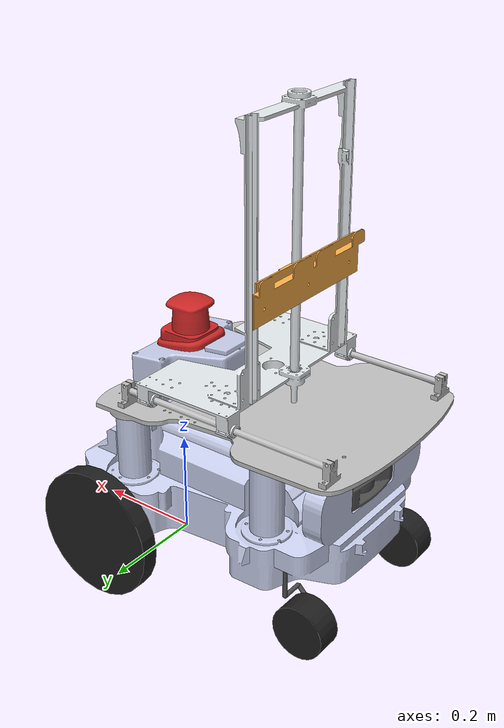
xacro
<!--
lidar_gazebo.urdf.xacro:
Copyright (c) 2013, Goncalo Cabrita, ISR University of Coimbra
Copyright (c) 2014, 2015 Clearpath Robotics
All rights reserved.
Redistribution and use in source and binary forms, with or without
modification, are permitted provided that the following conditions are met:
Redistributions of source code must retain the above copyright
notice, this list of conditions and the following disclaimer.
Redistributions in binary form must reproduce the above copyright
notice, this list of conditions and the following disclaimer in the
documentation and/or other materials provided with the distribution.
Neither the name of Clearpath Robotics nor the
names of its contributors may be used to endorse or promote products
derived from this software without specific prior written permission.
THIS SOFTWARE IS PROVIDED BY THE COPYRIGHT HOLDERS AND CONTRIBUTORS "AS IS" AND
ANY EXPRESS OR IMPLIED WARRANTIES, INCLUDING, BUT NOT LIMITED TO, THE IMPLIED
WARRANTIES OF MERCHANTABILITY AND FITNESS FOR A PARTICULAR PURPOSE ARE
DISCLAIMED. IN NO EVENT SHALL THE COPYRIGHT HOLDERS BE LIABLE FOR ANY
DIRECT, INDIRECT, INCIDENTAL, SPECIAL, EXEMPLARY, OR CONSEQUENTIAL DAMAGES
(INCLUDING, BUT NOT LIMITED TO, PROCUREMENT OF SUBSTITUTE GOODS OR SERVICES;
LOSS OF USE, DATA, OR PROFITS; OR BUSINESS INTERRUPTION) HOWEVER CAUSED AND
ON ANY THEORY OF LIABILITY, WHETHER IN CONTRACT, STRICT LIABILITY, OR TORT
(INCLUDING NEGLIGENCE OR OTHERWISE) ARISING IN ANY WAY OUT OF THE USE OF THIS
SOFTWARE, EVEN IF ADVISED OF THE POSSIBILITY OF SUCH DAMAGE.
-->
<?xml version="1.0" encoding="utf-8"?>

<robot name="unicorn" xmlns:xacro="http://www.ros.org/wiki/xacro">

  <xacro:arg name="robot_namespace" default="/" />
  <xacro:arg name="sim" default="true" />

  <!-- Define Constants -->
  <xacro:property name="M_PI" value="3.1415926535897931" />
  <xacro:property name="M_PI2" value="1.57079632679" />

    <!-- Swivel wheel -->
  <xacro:include filename="$(find unicorn_description)/urdf/swivel_wheel.urdf.xacro" />

    <!-- Wheel -->
  <xacro:include filename="$(find unicorn_description)/urdf/wheel.urdf.xacro" />

    <!-- camera pack-->
  <xacro:include filename="$(find unicorn_description)/urdf/stereo_camera_gazebo.urdf.xacro" />

   <!-- lidar pack-->
  <xacro:include filename="$(find unicorn_description)/urdf/lidar_gazebo.urdf.xacro" />

  <!-- Main Body-base -->
  <xacro:property name="base_x_size" value="0.72" />
  <xacro:property name="base_y_size" value="0.55" />
  <xacro:property name="base_z_size" value="0.23" />
  <xacro:property name="base_mass" value="15" /> <!-- in kg-->

  <!-- Base Link Rotation -->
  <xacro:if value="$(arg sim)">
    <xacro:arg name="base_link_rpy" default="0 0 0" />
  </xacro:if>
  <xacro:unless value="$(arg sim)">
    <xacro:arg name="base_link_rpy" default="0 0 ${M_PI}" />
  </xacro:unless>

  <!--Inertial macros for the box and cylinder. Units are kg*m^2-->
  <xacro:macro name="box_inertia" params="m x y z">
    <inertia ixx="${m*(y*y+z*z)/12}" ixy="0" ixz="0"
             iyy="${m*(x*x+z*z)/12}" iyz="0"
             izz="${m*(x*x+z*z)/12}" />
  </xacro:macro>

  <!-- Front Lidar -->
  <xacro:arg name="laser_xyz" default="-0.0214 -0.0049 0.465" />
  <xacro:arg name="laser_rpy" default="0 0 0" />
  <xacro:arg name="frontlidar_meshfile" default="package://unicorn_description/meshes/base_laser.STL" />

  <!-- Rear Lidar  -->
  <xacro:arg name="rear_laser_xyz" default="-0.42145 -0.00645 0.28652" />
  <xacro:arg name="rear_laser_rpy" default="0 0 ${M_PI}" />
  <xacro:arg name="rearlidar_meshfile" default="package://unicorn_description/meshes/rear_lidar.STL" />

  <!-- Zed Camera -->
  <xacro:arg name="zed_xyz" default="0.03112 -0.00552 0.36395" />
  <xacro:arg name="zed_rpy" default="0 0 0" />
  <xacro:arg name="zed_meshfile" default="package://unicorn_description/meshes/zed_link.STL" />

  <!-- Real Sense -->
  <xacro:arg name="real_base" default="${-0.4065-0.025} ${-0.03882+0.015} 0.33658" />
  <xacro:arg name="real_rgb_xyz" default="0 0.015 0" />
  <xacro:arg name="real_depth_xyz" default="0 0 0" />

  <xacro:arg name="real_rpy" default="0 0 ${M_PI}" />
  <xacro:arg name="real_optical_rpy" default="${-M_PI2} 0 ${-M_PI2}" />
  <xacro:arg name="real_depth_rpy" default="${-M_PI2} 0 ${-M_PI2}" />
  <xacro:arg name="realsense_meshfile" default="package://unicorn_description/meshes/real_sense.STL" />

 <!-- Main Body-base -->
  <link name="base_link" />

  <joint name="chassis_joint" type="fixed">
    <parent link="base_link"/>
    <child link="chassis_link" />
  <origin xyz="0 0.0 0" rpy="$(arg base_link_rpy)" />
  </joint>

  <link
    name="chassis_link">
    <inertial>
      <origin xyz="0 0 0" rpy="0 0 0" />
      <mass value="15" />
      <inertia ixx="1" ixy="0" ixz="3" iyy="3" iyz="3" izz="1" />
    </inertial>
    <visual>
      <origin xyz="0 0 0" rpy="0 0 0" />
      <geometry>
        <mesh filename="package://unicorn_description/meshes/chassis_link.STL" />
      </geometry>
      <material name="">
        <color rgba="0.792156862745098 0.819607843137255 0.933333333333333 1" />
      </material>
    </visual>
    <surface>
      <friction>
        <ode>
          <mu>0.8</mu>
          <mu2>0.8</mu2>
        </ode>
      </friction>
    </surface>
  <collision>
    <origin xyz="0 0 0" rpy="0 0 0" />
    <geometry>
      <mesh filename="package://unicorn_description/meshes/chassis_link.STL" />
    </geometry>
  </collision>
  </link>

<!-- Lift -->
  <link
    name="lift_link">
    <inertial>
      <origin xyz="0 0 0" rpy="0 0 0" />
      <mass value="10" />
      <inertia ixx="1" ixy="0" ixz="3" iyy="3" iyz="3" izz="1" />
    </inertial>
    <visual>
      <origin xyz="0 0 0" rpy="0 0 ${M_PI}" />
      <geometry>
        <mesh filename="package://unicorn_description/meshes/lift_link.STL" />
      </geometry>
      <material name="">
        <color rgba="0.752941176470588 0.752941176470588 0.752941176470588 1" />
      </material>
    </visual>
      <surface>
        <friction>
          <ode>
            <mu>0.8</mu>
            <mu2>0.8</mu2>
          </ode>
        </friction>
      </surface>
    <collision>
      <origin xyz="0 0 0" rpy="0 0 ${M_PI}" />
      <geometry>
        <mesh filename="package://unicorn_description/meshes/lift_link.STL" />
      </geometry>
    </collision>
  </link>

  <joint name="lift_joint" type="fixed">
    <origin xyz="0 0 0" rpy="0 0 ${M_PI}" />
    <parent link="chassis_link" />
    <child link="lift_link" />
    <axis xyz="0 0 0" />
    <joint_properties damping="1" friction="0.5" />
  </joint>

<!-- Lift links-->
  <link
    name="lift_horizontal_link">
    <visual>
      <origin xyz="0 0 0" rpy="0 0 0" />
      <geometry>
        <mesh filename="package://unicorn_description/meshes/lift_horizontal_link.STL" />
      </geometry>
      <material name="">
        <color rgba="0.898039215686275 0.917647058823529 0.929411764705882 1" />
      </material>
    </visual>
      <surface>
        <friction>
          <ode>
            <mu>0.8</mu>
            <mu2>0.8</mu2>
          </ode>
        </friction>
      </surface>
    <collision>
      <origin xyz="0 0 0" rpy="0 0 0" />
      <geometry>
        <mesh filename="package://unicorn_description/meshes/lift_horizontal_link.STL" />
      </geometry>
    </collision>
    <inertial>
      <origin xyz="0 0 0" rpy="0 0 0" />
      <mass value="1.50791731426345" />
      <inertia ixx="0.00998369504134607" ixy="1.05918049885466E-06" ixz="3.20101525315815E-06" iyy="0.0148024039374132" iyz="1.02762580499191E-05" izz="0.0197484509547163" />
    </inertial>
  </link>

  <link
    name="lift_vertical_link">
    <inertial>
      <origin xyz="-0.0046764 0.62992 -0.22573" rpy="0 0 0" />
      <mass value="0.61742" />
      <inertia ixx="0.00029455" ixy="9.8754E-10" ixz="2.0681E-19" iyy="0.00411" iyz="3.0422E-05" izz="0.0043679" />
    </inertial>
    <visual>
      <origin xyz="0 0 0" rpy="0 0 0" />
      <geometry>
        <mesh filename="package://unicorn_description/meshes/lift_vertical_link.STL" />
      </geometry>
      <material name="">
        <color rgba="1 0.69412 0.27843 1" />
      </material>
    </visual>
    <surface>
      <friction>
        <ode>
          <mu>0.8</mu>
          <mu2>0.8</mu2>
        </ode>
      </friction>
    </surface>
    <collision>
      <origin xyz="0 0 0" rpy="0 0 0" />
      <geometry>
        <mesh filename="package://unicorn_description/meshes/lift_vertical_link.STL" />
      </geometry>
    </collision>
  </link>

  <joint name="lift_horizontal_joint" type="fixed"> <!-- type="prismatic" -->
    <parent  link="lift_link" />
    <child  link="lift_horizontal_link" />
    <origin xyz="0.05 0 0.137" rpy="${M_PI2} 0 ${-M_PI2}" />
    <axis xyz="0 0 -1" rpy="0 0 0"  />
    <limit lower="0.17" upper="0" effort="100" velocity="0" />
    <joint_properties damping="10000" friction="1000" />
  </joint>

  <joint name="lift_vertical_joint" type="fixed"> <!-- type="prismatic" -->
    <origin xyz="0 -0.16 0" rpy="0 0 0" />
    <parent link="lift_horizontal_link" />
    <child link="lift_vertical_link" />
    <axis xyz="0 1 0" />
    <limit lower="0" upper="0.16" effort="100" velocity="0" />
    <joint_properties damping="1000" friction="1000" />
  </joint>

<!-- Front Wheels -->
<!-- Dummy Link for simulation, used to Correct back motion from HRP drivers -->
  <xacro:if value="$(arg sim)">
    <link name="dummy_wheel_link" >
      <inertial>
        <origin xyz="0 0 0" rpy="0 0 0" />
        <mass value="0.01" />
        <box_inertia  m="${5*0.01}" x="${base_x_size}" y="${base_y_size}" z="${base_z_size}"/>
      </inertial>
    </link>

    <joint name="dummy_wheel_joint" type="fixed">
      <origin xyz="0 0.0 0" rpy="0 0 ${M_PI}" />
      <parent link="chassis_link"/>
      <child link="dummy_wheel_link"/>
    </joint>

    <wheel fb="back" lr="left" parent="dummy_wheel_link"  translateY="0.24" translateX="0" translateZ="0.1225" wheel_radius="0.1225" wheel_height="0.032" flip="1"/>
    <wheel fb="back" lr="right" parent="dummy_wheel_link" translateY="-0.24" translateX="0 " translateZ="0.1225" wheel_radius="0.1225" wheel_height="0.032" flip="1"/>
  </xacro:if>
  <!-- For real Platform -->
  <xacro:unless value="$(arg sim)">
    <wheel fb="back" lr="left" parent="chassis_link"  translateY="0.24" translateX="0" translateZ="0.1225" wheel_radius="0.1225" wheel_height="0.032" flip="1"/>
    <wheel fb="back" lr="right" parent="chassis_link" translateY="-0.24" translateX="0 " translateZ="0.1225" wheel_radius="0.1225" wheel_height="0.032" flip="1"/>
  </xacro:unless>

  <!-- Swivel back wheels - Should be changed to omniwheels-->
  <swivel_wheel fb="front" lr="left" parent="chassis_link" translateY="0.16" translateX="-0.355" translateZ="0.1531" wheel_radius="0.05" wheel_height="0.05" flip="0"/>
  <swivel_wheel fb="front" lr="right" parent="chassis_link" translateY="-0.16" translateX="-0.355" translateZ="0.1531" wheel_radius="0.05" wheel_height="0.05" flip="0"/>

  <!-- Front Lidar -->
  <lidar_gazebo frame="base_laser" topic="frontLidar/scan" simulation="$(arg sim)" sample_size="800" min_angle="-2.09439510239" max_angle="2.09439510239" robot_namespace="$(arg robot_namespace)" filename="$(arg frontlidar_meshfile)" />

  <joint name="laser_mount_joint" type="fixed">
    <origin xyz="$(arg laser_xyz)" rpy="$(arg laser_rpy)" />
    <parent link="chassis_link" />
    <child link="base_laser" />
  </joint>

   <!-- Back Lidar -->
  <lidar_gazebo frame="rear_laser" topic="rearLidar/scan" simulation="$(arg sim)" sample_size="11" min_angle="-0.698131701" max_angle="0.698131701" robot_namespace="$(arg robot_namespace)" filename="$(arg rearlidar_meshfile)"/>

  <joint name="rear_laser_mount_joint" type="fixed">
    <origin xyz="$(arg rear_laser_xyz)" rpy="$(arg rear_laser_rpy)" />
    <parent link="chassis_link" />
    <child link="rear_laser" />
  </joint>

  <!-- Zed Camera -->
  <link name="zed_camera_center">
      <visual>
          <origin xyz="0 0 0" rpy="0 0 0"/>
          <geometry>
              <mesh filename="$(arg zed_meshfile)" />
          </geometry>
      </visual>
  </link>

  <link name="zed_right_camera_frame" />
  <link name="zed_right_camera_optical_frame"/>
  <link name="zed_left_camera_optical_frame"/>
  <link name="zed_left_camera_frame" />

  <joint name="zed_camera_center_joint" type="fixed">
      <parent link="chassis_link"/>
      <child link="zed_camera_center"/>
      <origin xyz="$(arg zed_xyz)" rpy="0 0 0" />
  </joint>

  <joint name="zed_left_camera_joint" type="fixed">
      <parent link="zed_camera_center"/>
      <child link="zed_left_camera_frame"/>
      <origin xyz="0 0.06 0" rpy="0 0 0" />
  </joint>

  <joint name="zed_left_camera_optical_joint" type="fixed">
      <origin xyz="0 0 0" rpy="-${M_PI/2} 0.0 -${M_PI/2}"/>
      <parent link="zed_left_camera_frame"/>
      <child link="zed_left_camera_optical_frame"/>
  </joint>

  <joint name="zed_right_camera_joint" type="fixed">
      <parent link="zed_camera_center"/>
      <child link="zed_right_camera_frame"/>
      <origin xyz="0 -0.06 0" rpy="0 0 0" />
  </joint>

  <joint name="zed_right_camera_optical_joint" type="fixed">
      <origin xyz="0 0 0" rpy="-${M_PI/2} 0.0 -${M_PI/2}"/>
      <parent link="zed_right_camera_frame"/>
      <child link="zed_right_camera_optical_frame"/>
  </joint>

  <!-- Simulated Zed Camera-->
  <xacro:if value="$(arg sim)">
      <stereo_camera frame_rgb="zed_camera_center" frame_depth="zed_depth_dummy_frame_sim_only" cameraName="zed"  topic="pointcloud" robot_namespace="$(arg robot_namespace)"/>

      <link name="zed_depth_dummy_frame_sim_only" />
      <joint name="zed_camera_depth_joint" type="fixed">
        <origin xyz="0 0 0" rpy="${-pi/2} 0 ${-pi/2}"/>
        <parent link="zed_camera_center"/>
        <child link="zed_depth_dummy_frame_sim_only"/>
      </joint>
  </xacro:if>

  <!-- realsense Camera -->
  <link
    name="realsense_link">
      <visual>
      <origin xyz="0 0 0" rpy="0 0 0"/>
      <geometry>
          <mesh filename="$(arg realsense_meshfile)" />
      </geometry>
    </visual>
  </link>

  <joint name="realsense_joint" type="fixed">
    <origin xyz="$(arg real_base)" rpy="$(arg real_rpy)"/>
    <parent link="chassis_link"/>
    <child link="realsense_link"/>
  </joint>

  <!-- Links only needed in simulation, created by realsense software when robot is running-->
  <xacro:if value="$(arg sim)">
    <!-- Simulated realsense Camera-->
    <stereo_camera frame_rgb="realsense_color_frame" frame_depth="realsense_depth_dummy_frame_sim_only" cameraName="realsense" topic="pointcloud" robot_namespace="$(arg robot_namespace)"/>

    <link name="realsense_color_frame" />
    <link name="realsense_depth_frame" />
    <link name="realsense_depth_dummy_frame_sim_only" />
    <link name="realsense_depth_optical_frame" />
    <link name="realsense_color_optical_frame" />

    <joint name="realsense_gb_joint" type="fixed">
      <origin xyz="$(arg real_rgb_xyz)" rpy="0 0 0"/>
      <parent link="realsense_link"/>
      <child link="realsense_color_frame"/>
    </joint>

    <joint name="realsense_depth_joint" type="fixed">
      <origin xyz="$(arg real_depth_xyz)" rpy="0 0 0"/>
      <parent link="realsense_link"/>
      <child link="realsense_depth_frame"/>
    </joint>

    <joint name="realsense_depth_dummy_joint" type="fixed">
      <origin xyz="$(arg real_depth_xyz)" rpy="-${M_PI/2} 0.0 -${M_PI/2}"/>
      <parent link="realsense_link"/>
      <child link="realsense_depth_dummy_frame_sim_only"/>
    </joint>

    <joint name="realsense_optical_color_joint" type="fixed">
      <origin xyz="0 0 0" rpy="$(arg real_optical_rpy)"/>
      <parent link="realsense_color_frame"/>
      <child link="realsense_color_optical_frame"/>
    </joint>

    <joint name="realsense_optical_depth_joint" type="fixed">
      <origin xyz="0 0 0" rpy="$(arg real_depth_rpy)"/>
      <parent link="realsense_depth_frame"/>
      <child link="realsense_depth_optical_frame"/>
    </joint>
  </xacro:if>

  <!-- Set Color for nodes in Gazebo-->
  <gazebo reference="chassis_link">
    <material>Gazebo/Grey</material>
    <turnGravityOff>false</turnGravityOff>
  </gazebo>

  <gazebo reference="lift_link">
    <material>Gazebo/Grey</material>
    <turnGravityOff>false</turnGravityOff>
  </gazebo>

  <gazebo reference="base_laser">
    <material>Gazebo/RedBright</material>
    <turnGravityOff>false</turnGravityOff>
  </gazebo>

  <gazebo reference="rear_laser">
    <material>Gazebo/DarkGrey</material>
    <turnGravityOff>false</turnGravityOff>
  </gazebo>

  <gazebo reference="zed_camera_center">
    <material>Gazebo/FlatBlack</material>
    <turnGravityOff>false</turnGravityOff>
  </gazebo>

  <gazebo reference="realsense_link">
    <material>Gazebo/Grey</material>
    <turnGravityOff>false</turnGravityOff>
  </gazebo>

  <gazebo reference="lift_vertical_link">
    <material>Gazebo/White</material>
    <turnGravityOff>false</turnGravityOff>
  </gazebo>

  <gazebo reference="lift_horizontal_link">
    <material>Gazebo/White</material>
    <turnGravityOff>false</turnGravityOff>
  </gazebo>

<!-- Used for Simulating Lift movment, removed due to problems with controllers -->
  <gazebo reference="lift_vertical_joint">
      <mu1 value="0.8" />
      <mu2 value="0.8" />
      <kp value="100000.0" />
      <kd value="10000.0" />
      <dampingFactor value="0.9" />
      <fdir1 value="1 0 0" />
      <material>Gazebo/Gold</material>
      <turnGravityOff>false</turnGravityOff>
  </gazebo>

  <gazebo reference="lift_horizontal_joint">
      <mu1 value="0.8" />
      <mu2 value="0.8" />
      <kp value="100000.0" />
      <kd value="10000.0" />
      <dampingFactor value="0.9" />
      <fdir1 value="1 0 0" />
      <material>Gazebo/Grey</material>
      <turnGravityOff>false</turnGravityOff>
  </gazebo>

<!--Hardware Interface for moving lift in simulator -->
<gazebo>
  <transmission name="lift_h_trans">
      <type>transmission_interface/SimpleTransmission</type>
      <joint name="lift_horizontal_joint">
        <hardwareInterface>hardware_interface/EffortJointInterface</hardwareInterface>
      </joint>
      <actuator name="lift_h_motor">
        <hardwareInterface>hardware_interface/EffortJointInterface</hardwareInterface>
        <mechanicalReduction>5</mechanicalReduction>
      </actuator>
  </transmission>

  <transmission name="lift_v_trans">
      <type>transmission_interface/SimpleTransmission</type>
      <joint name="lift_vertical_joint">
        <hardwareInterface>hardware_interface/EffortJointInterface</hardwareInterface>
      </joint>
      <actuator name="lift_v_motor">
        <hardwareInterface>hardware_interface/EffortJointInterface</hardwareInterface>
        <mechanicalReduction>5</mechanicalReduction>
      </actuator>
  </transmission>
</gazebo>

<xacro:if value="$(arg sim)">
  <!-- GAZEBO STUFF -->
  <gazebo>
     <!-- Husqvarna Wheel encoders -->
    <plugin name="automower_gazebo_controller" filename="libam_gazebo_controller_2wd.so">
      <alwaysOn>true</alwaysOn>
      <updateRate>50.0</updateRate>
      <leftJoint>back_right_wheel_joint</leftJoint>
      <rightJoint>back_left_wheel_joint</rightJoint>
      <wheelSeparation>0.4645</wheelSeparation>
      <wheelDiameter>0.245</wheelDiameter>
      <wheelTorque>100</wheelTorque>
      <commandTopic>cmd_vel</commandTopic>
      <odometryTopic>wheel_encoder/odom</odometryTopic>
      <odometryFrame>odom_chassis</odometryFrame>
      <robotBaseFrame>chassis_link</robotBaseFrame>
      <publishWheelTF>false</publishWheelTF>
      <publishOdomTF>false</publishOdomTF>
      <publishWheelJointState>false</publishWheelJointState>

      <gaussianNoise>0.1</gaussianNoise>
      <accelDrift>0.5 0.5 0.5</accelDrift>
      <accelGaussianNoise>0.35 0.35 0.3</accelGaussianNoise>
      <rateDrift>0.1 0.1 0.1</rateDrift>
      <rateGaussianNoise>0.05 0.05 0.015</rateGaussianNoise>
      <headingDrift>0.1</headingDrift>
      <headingGaussianNoise>1.00</headingGaussianNoise>
    </plugin>

    <!-- Fake UWB -->
    <plugin name="p3d_base_controller" filename="libgazebo_ros_p3d.so">
        <alwaysOn>true</alwaysOn>
        <updateRate>50.0</updateRate>
        <bodyName>chassis_link</bodyName>
        <topicName>uwb/pose</topicName>
        <gaussianNoise>0.1</gaussianNoise>
        <frameName>map</frameName>
        <xyzOffset>0 0 0</xyzOffset>
        <rpyOffset>0 0 0</rpyOffset>
      </plugin>
    <!-- Fake Imu -->
    <plugin name="imu_plugin" filename="libhector_gazebo_ros_imu.so">
      <alwaysOn>true</alwaysOn>
      <bodyName>zed_camera</bodyName>
      <topicName>zed/imu</topicName>
      <serviceName>imu_service</serviceName>
      <updateRate>100.0</updateRate>
      <rpyOffsets>0 0 0</rpyOffsets>
        <gaussianNoise>0.1</gaussianNoise>
        <accelDrift>0.1 0.1 0.1</accelDrift>
        <accelGaussianNoise>0.35 0.35 0.3</accelGaussianNoise>
        <rateDrift>0.1 0.1 0.1</rateDrift>
        <rateGaussianNoise>0.05 0.05 0.015</rateGaussianNoise>
        <headingDrift>0.1</headingDrift>
        <headingGaussianNoise>1.00</headingGaussianNoise>
    </plugin>

    <!-- Joint controll plugin -->
    <plugin name="gazebo_ros_control" filename="libgazebo_ros_control.so">
      <robotNamespace>/unicorn</robotNamespace>
    </plugin>

    <!-- gazebo wheel encoders -->
    <plugin name="am_gazebo_wheelencoder" filename="libam_gazebo_wheelencoder.so">
  </plugin>

  </gazebo>
</xacro:if>

</robot>

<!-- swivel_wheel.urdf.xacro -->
<robot name="swivel_wheel" xmlns:xacro="http://www.ros.org/wiki/xacro">

  <!-- Wheels -->
  <xacro:property name="wheel_mass" value="0.5" /> <!-- in kg-->

  <xacro:macro name="cylinder_inertia" params="m r h">
    <inertia ixx="${m*(3*r*r+h*h)/12}" ixy="0" ixz="0"
             iyy="${m*(3*r*r+h*h)/12}" iyz="0"
             izz="${m*r*r/2}" />
  </xacro:macro>

  <xacro:macro name="swivel_arm" params="lr index l offset">
    <link name="sw_arm_${lr}_${index}">

      <inertial>
        <mass value="0.01" />
        <origin xyz="0 0 0" />
        <cylinder_inertia m="0.01" r="0.004" h="${l}" />
      </inertial>

      <visual>
        <geometry>
          <cylinder radius="0.004" length="${l}" />
        </geometry>
        <material name="silver">
          <color rgba="0.3 0.3 0.3 1" />
        </material>
        <origin rpy="0 0 0" xyz="${offset}" />
      </visual>
    </link>
  </xacro:macro>

  <xacro:macro name="swivel_wheel"
               params="fb lr parent translateX translateY translateZ wheel_radius wheel_height flip"> <!--fb : front, back ; lr: left, right -->

    <!-- First link connected to parent-->
    <swivel_arm lr="${lr}" index="1" l="0.06" offset="0 0 -0.03" />

    <joint name="sw_arm_${lr}_connect_1" type="continuous">
      <origin xyz="${translateX} ${translateY} ${translateZ}" rpy="0 0 0" />
      <axis xyz="0 0 1" rpy="0 0 0" />
      <parent link="${parent}" />
      <child link="sw_arm_${lr}_1" />
      <limit effort="100" velocity="100" />
      <joint_properties damping="0.1" friction="0.1" />
    </joint>

    <!-- Second link connected to first-->
    <swivel_arm lr="${lr}" index="2" l="0.04" offset="0 0 0.02" />

    <joint name="sw_arm_${lr}_connect_2" type="fixed">
      <origin rpy="1.5707 0 0" xyz="0 0 -0.06" />
      <parent link="sw_arm_${lr}_1" />
      <child link="sw_arm_${lr}_2" />
    </joint>

    <!-- Third link connected to second-->
    <swivel_arm lr="${lr}" index="3" l="0.06" offset="0 0 -0.03" />

    <joint name="sw_arm_${lr}_connect_3" type="fixed">
      <origin rpy="-1.5707 0 -0.78" xyz="0 0 0.04" />
      <parent link="sw_arm_${lr}_2" />
      <child link="sw_arm_${lr}_3" />
    </joint>

    <!-- Fourth link connected to third-->
    <swivel_arm lr="${lr}" index="4" l="0.04" offset="0 0 -0.02" />

    <joint name="sw_arm_${lr}_connect_4" type="fixed">
      <origin rpy="1.5707 0 0" xyz="0 0 -0.060" />
      <parent link="sw_arm_${lr}_3" />
      <child link="sw_arm_${lr}_4" />
    </joint>

    <!-- Wheel connected to fourth-->
    <link name="${fb}_${lr}_swivel_wheel">
      <visual>
        <origin xyz="0 0 0" rpy="${flip*M_PI/2} 0 0" />
        <geometry>
          <cylinder length="${wheel_height}" radius="${wheel_radius}" />
        </geometry>
        <material name="Black" />
      </visual>
      <collision>
        <origin xyz="0 0 0" rpy="0 0 0" />
        <geometry>
          <cylinder length="${wheel_height}" radius="${wheel_radius}" />
        </geometry>
        <surface>
          <friction>
            <ode>
              <mu>0.8</mu>
              <mu2>0.8</mu2>
            </ode>
          </friction>
        </surface>
      </collision>
      <inertial>
        <mass value="${wheel_mass}" />
        <origin xyz="0 0 0" />
        <cylinder_inertia m="${wheel_mass}" r="${wheel_radius}" h="${wheel_height}" />
      </inertial>
    </link>

    <gazebo reference="${fb}_${lr}_swivel_wheel">
      <mu1 value="100" />
      <mu2 value="100" />
      <kp value="10e2" />
      <kd value="10e2" />
      <dampingFactor value="0.9" />
      <fdir1 value="1 1 1" />
      <material>Gazebo/Black</material>
      <turnGravityOff>false</turnGravityOff>
    </gazebo>

    <joint name="${fb}_${lr}_swivel_wheel_joint" type="continuous">
      <parent link="sw_arm_${lr}_4" />
      <child link="${fb}_${lr}_swivel_wheel" />
      <origin rpy="0 0 0" xyz="0 0 -0.04" />
      <axis xyz="0 0 1" rpy="0 0 0" />
      <limit effort="100" velocity="100" />
      <joint_properties damping="1" friction="1" />
    </joint>

    <!-- Transmission is important to link the joints and the controller -->

  </xacro:macro>
</robot>

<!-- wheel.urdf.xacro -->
<robot name="wheel" xmlns:xacro="http://www.ros.org/wiki/xacro">

  <!-- Wheels -->
  <xacro:property name="wheel_mass" value="0.3" /> <!-- in kg-->

  <xacro:macro name="cylinder_inertia" params="m r h">
    <inertia ixx="${m*(3*r*r+h*h)/12}" ixy="0" ixz="0"
             iyy="${m*(3*r*r+h*h)/12}" iyz="0"
             izz="${m*r*r/2}" />
  </xacro:macro>

  <xacro:macro name="wheel"
               params="fb lr parent translateX translateY translateZ wheel_radius wheel_height flip"> <!--fb : front, back ; lr: left, right -->
    <link name="${fb}_${lr}_wheel">
      <visual>
        <origin xyz="0 0 0" rpy="${flip*M_PI/2} 0 0" />
        <geometry>
          <cylinder length="${wheel_height}" radius="${wheel_radius}" />
        </geometry>
        <material name="Black" />
      </visual>
      <surface>
        <friction>
          <ode>
            <mu>0.8</mu>
            <mu2>0.8</mu2>
          </ode>
        </friction>
      </surface>
      <collision>
        <origin xyz="0 0 0" rpy="${flip*M_PI/2} 0 0" />
        <geometry>
          <cylinder length="${wheel_height}" radius="${wheel_radius}" />
        </geometry>
      </collision>
      <inertial>
        <mass value="${wheel_mass}" />
        <origin xyz="0 0 0" />
        <cylinder_inertia m="${wheel_mass}" r="${wheel_radius}" h="${wheel_height}" />
      </inertial>
    </link>

    <gazebo reference="${fb}_${lr}_wheel">
      <mu1 value="10000.0" />
      <mu2 value="10000.0" />
      <kp value="10e4" />
      <kd value="10e2" />
      <dampingFactor value="0.9" />
      <fdir1 value="1 0 0" />
      <material>Gazebo/Black</material>
      <turnGravityOff>false</turnGravityOff>
    </gazebo>

    <joint name="${fb}_${lr}_wheel_joint" type="continuous">
      <parent link="${parent}" />
      <child link="${fb}_${lr}_wheel" />
      <origin xyz="${translateX} ${translateY} ${translateZ}" rpy="0 0 0" />
      <axis xyz="0 1 0" rpy="0 0 0" />
      <limit effort="1000" velocity="100" />
      <joint_properties damping="0.5" friction="0.1" />
    </joint>

    <!-- Transmission is important to link the joints and the controller -->
    <transmission name="${fb}_${lr}_wheel_joint_trans">
      <type>transmission_interface/SimpleTransmission</type>
      <joint name="${fb}_${lr}_wheel_joint">
        <hardwareInterface>hardware_interface/EffortJointInterface</hardwareInterface>
      </joint>
      <actuator name="${fb}_${lr}_wheel_joint_motor">
        <hardwareInterface>hardware_interface/EffortJointInterface</hardwareInterface>
        <mechanicalReduction>1</mechanicalReduction>
      </actuator>
    </transmission>

  </xacro:macro>
</robot>

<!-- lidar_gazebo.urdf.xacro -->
<robot xmlns:xacro="http://www.ros.org/wiki/xacro">

  <xacro:macro name="lidar_gazebo" params="frame:=laser topic:=scan simulation:=true sample_size:=800 update_rate:=50
               min_angle:=-2.35619 max_angle:=2.35619 min_range:=0.1 max_range:=30.0 filename robot_namespace:=/" >

    <xacro:arg name="sim" default="${simulation}" />

    <link name="${frame}">

      <visual>
        <origin xyz="0 0 0" rpy="0 0 0" />
        <geometry>
          <!-- Origin of this mesh is the focal point of the LIDAR. 1.57079632679-->
          <mesh filename="${filename}" />
        </geometry>
      </visual>

    </link>

    <xacro:if value="$(arg sim)">
      <gazebo reference="${frame}">
        <turnGravityOff>true</turnGravityOff>
        <sensor type="ray" name="${frame}">
          <pose>0 0 0 0 0 0</pose>
          <visualize>false</visualize>
          <update_rate>${update_rate}</update_rate>
          <ray>
            <scan>
              <horizontal>
                <samples>${sample_size}</samples>
                <resolution>1</resolution>
                <min_angle>${min_angle}</min_angle>
                <max_angle>${max_angle}</max_angle>
              </horizontal>
            </scan>
            <range>
              <min>${min_range}</min>
              <max>${max_range}</max>
              <resolution>0.01</resolution>
            </range>
            <noise>
              <type>gaussian</type>
              <mean>0.0</mean>
              <stddev>0.001</stddev>
            </noise>
          </ray>
          <plugin name="gazebo_ros_laser" filename="libgazebo_ros_laser.so">
            <topicName>${topic}</topicName>
            <frameName>${frame}</frameName>
            <robotNamespace>${robot_namespace}</robotNamespace>
          </plugin>
        </sensor>
      </gazebo>
    </xacro:if>
  </xacro:macro>
</robot>
